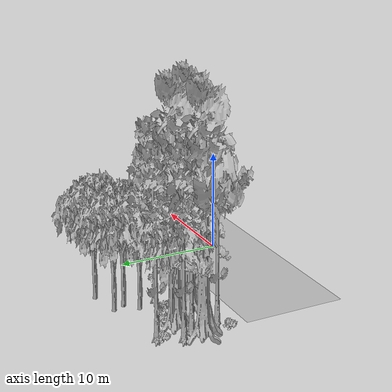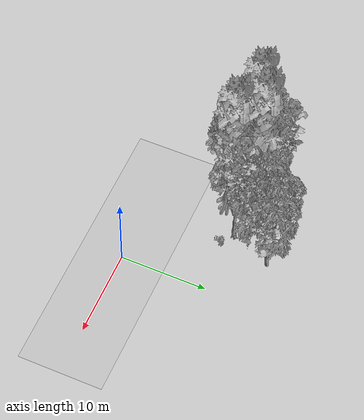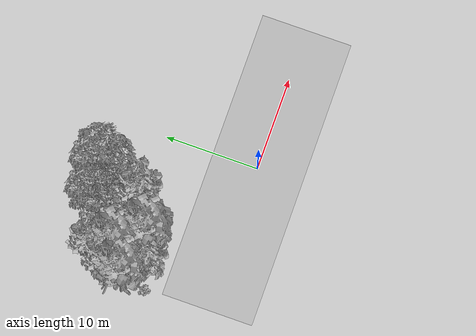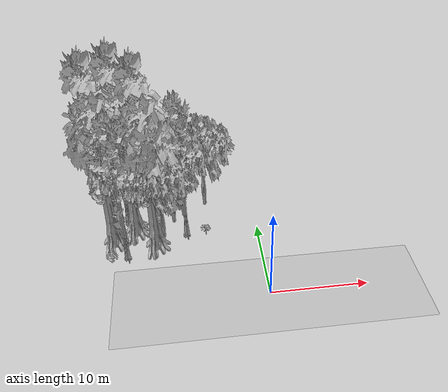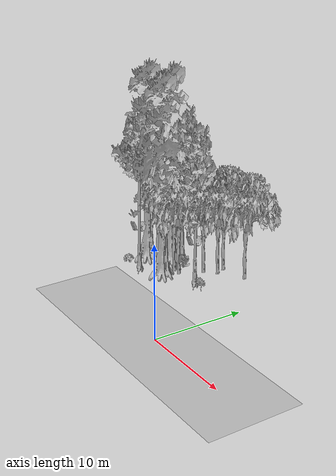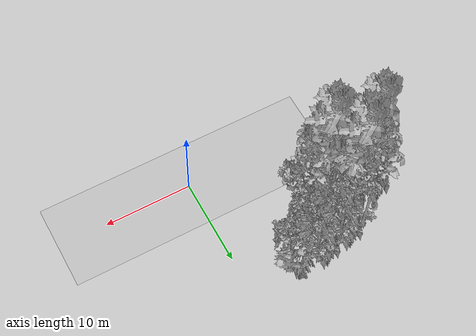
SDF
<sdf version="1.7">
 <world name="default">
  <model name="ground_plane">
   <static>1</static>
   <link name="link">
    <collision name="collision">
     <geometry><plane><normal>0 0 1</normal><size>100 100</size></plane></geometry>
     <surface><contact><ode><min_depth>0.01</min_depth><max_vel>0</max_vel></ode></contact></surface>
    </collision>
    <visual name="grass">
     <cast_shadows>0</cast_shadows>
     <geometry>
      <mesh>
       <scale>0.5814285714285714 0.18142857142857144 0.1</scale>
       <uri>file://grass_plane/meshes/grass_plane.dae</uri>
      </mesh>
     </geometry>
    </visual>
   </link>
  </model>
  <model name="Tree 23">
   <static>1</static>
   <pose>-10.539529069901036 9.728312270743949 0 1.57079 -0 0</pose>
   <link name="link">
    <collision name="collision">
     <geometry><mesh><scale>3.5 5 3.5</scale><uri>model://tree_2/meshes/tree_2.obj</uri></mesh></geometry>
    </collision>
    <visual name="visual">
     <geometry><mesh><scale>3.5 5 3.5</scale><uri>model://tree_2/meshes/tree_2.obj</uri></mesh></geometry>
    </visual>
   </link>
  </model>
  <model name="Tree 28">
   <static>1</static>
   <pose>-14.41020064280336 7.16225239467127 0 1.57079 -0 0</pose>
   <link name="link">
    <collision name="collision">
     <geometry><mesh><scale>3.5 5 3.5</scale><uri>model://tree_9/meshes/tree_9.obj</uri></mesh></geometry>
    </collision>
    <visual name="visual">
     <geometry><mesh><scale>3.5 5 3.5</scale><uri>model://tree_9/meshes/tree_9.obj</uri></mesh></geometry>
    </visual>
   </link>
  </model>
  <model name="Tree 37">
   <static>1</static>
   <pose>-15.541439748845285 10.894730508550747 0 1.57079 -0 0</pose>
   <link name="link">
    <collision name="collision">
     <geometry><mesh><scale>3.5 5 3.5</scale><uri>model://tree_9/meshes/tree_9.obj</uri></mesh></geometry>
    </collision>
    <visual name="visual">
     <geometry><mesh><scale>3.5 5 3.5</scale><uri>model://tree_9/meshes/tree_9.obj</uri></mesh></geometry>
    </visual>
   </link>
  </model>
  <model name="Tree 48">
   <static>1</static>
   <pose>-13.507995330129091 10.686962666167712 0 1.57079 -0 0</pose>
   <link name="link">
    <collision name="collision">
     <geometry><mesh><scale>3.5 5 3.5</scale><uri>model://tree_4/meshes/tree_4.obj</uri></mesh></geometry>
    </collision>
    <visual name="visual">
     <geometry><mesh><scale>3.5 5 3.5</scale><uri>model://tree_4/meshes/tree_4.obj</uri></mesh></geometry>
    </visual>
   </link>
  </model>
  <model name="Tree 94">
   <static>1</static>
   <pose>-11.501742207472198 9.783205465512477 0 1.57079 -0 0</pose>
   <link name="link">
    <collision name="collision">
     <geometry><mesh><scale>3.5 5 3.5</scale><uri>model://tree_2/meshes/tree_2.obj</uri></mesh></geometry>
    </collision>
    <visual name="visual">
     <geometry><mesh><scale>3.5 5 3.5</scale><uri>model://tree_2/meshes/tree_2.obj</uri></mesh></geometry>
    </visual>
   </link>
  </model>
  <model name="Tree 123">
   <static>1</static>
   <pose>-5.646809609880449 14.964036925481558 0 1.57079 -0 0</pose>
   <link name="link">
    <collision name="collision">
     <geometry><mesh><scale>3.5 5 3.5</scale><uri>model://tree_2/meshes/tree_2.obj</uri></mesh></geometry>
    </collision>
    <visual name="visual">
     <geometry><mesh><scale>3.5 5 3.5</scale><uri>model://tree_2/meshes/tree_2.obj</uri></mesh></geometry>
    </visual>
   </link>
  </model>
  <model name="Tree 155">
   <static>1</static>
   <pose>-8.672390897201822 14.329669799535345 0 1.57079 -0 0</pose>
   <link name="link">
    <collision name="collision">
     <geometry><mesh><scale>3.5 5 3.5</scale><uri>model://tree_2/meshes/tree_2.obj</uri></mesh></geometry>
    </collision>
    <visual name="visual">
     <geometry><mesh><scale>3.5 5 3.5</scale><uri>model://tree_2/meshes/tree_2.obj</uri></mesh></geometry>
    </visual>
   </link>
  </model>
  <model name="Tree 184">
   <static>1</static>
   <pose>-14.756111349384938 9.785228138002811 0 1.57079 -0 0</pose>
   <link name="link">
    <collision name="collision">
     <geometry><mesh><scale>3.5 5 3.5</scale><uri>model://tree_9/meshes/tree_9.obj</uri></mesh></geometry>
    </collision>
    <visual name="visual">
     <geometry><mesh><scale>3.5 5 3.5</scale><uri>model://tree_9/meshes/tree_9.obj</uri></mesh></geometry>
    </visual>
   </link>
  </model>
  <model name="Tree 188">
   <static>1</static>
   <pose>-15.833524602012155 9.159338971100901 0 1.57079 -0 0</pose>
   <link name="link">
    <collision name="collision">
     <geometry><mesh><scale>3.5 5 3.5</scale><uri>model://tree_4/meshes/tree_4.obj</uri></mesh></geometry>
    </collision>
    <visual name="visual">
     <geometry><mesh><scale>3.5 5 3.5</scale><uri>model://tree_4/meshes/tree_4.obj</uri></mesh></geometry>
    </visual>
   </link>
  </model>
  <model name="Tree 189">
   <static>1</static>
   <pose>-13.846630257436793 11.152741196419484 0 1.57079 -0 0</pose>
   <link name="link">
    <collision name="collision">
     <geometry><mesh><scale>3.5 5 3.5</scale><uri>model://tree_2/meshes/tree_2.obj</uri></mesh></geometry>
    </collision>
    <visual name="visual">
     <geometry><mesh><scale>3.5 5 3.5</scale><uri>model://tree_2/meshes/tree_2.obj</uri></mesh></geometry>
    </visual>
   </link>
  </model>
  <model name="Tree 276">
   <static>1</static>
   <pose>-11.272810550388087 8.157295111532992 0 1.57079 -0 0</pose>
   <link name="link">
    <collision name="collision">
     <geometry><mesh><scale>3.5 5 3.5</scale><uri>model://tree_4/meshes/tree_4.obj</uri></mesh></geometry>
    </collision>
    <visual name="visual">
     <geometry><mesh><scale>3.5 5 3.5</scale><uri>model://tree_4/meshes/tree_4.obj</uri></mesh></geometry>
    </visual>
   </link>
  </model>
  <model name="Tree 284">
   <static>1</static>
   <pose>-8.23179889257694 13.256467525382075 0 1.57079 -0 0</pose>
   <link name="link">
    <collision name="collision">
     <geometry><mesh><scale>3.5 5 3.5</scale><uri>model://tree_2/meshes/tree_2.obj</uri></mesh></geometry>
    </collision>
    <visual name="visual">
     <geometry><mesh><scale>3.5 5 3.5</scale><uri>model://tree_2/meshes/tree_2.obj</uri></mesh></geometry>
    </visual>
   </link>
  </model>
  <model name="Tree 320">
   <static>1</static>
   <pose>-7.92938041100102 10.105346835403985 0 1.57079 -0 0</pose>
   <link name="link">
    <collision name="collision">
     <geometry><mesh><scale>3.5 5 3.5</scale><uri>model://tree_9/meshes/tree_9.obj</uri></mesh></geometry>
    </collision>
    <visual name="visual">
     <geometry><mesh><scale>3.5 5 3.5</scale><uri>model://tree_9/meshes/tree_9.obj</uri></mesh></geometry>
    </visual>
   </link>
  </model>
  <model name="Tree 333">
   <static>1</static>
   <pose>-9.377544155614423 12.176304128685043 0 1.57079 -0 0</pose>
   <link name="link">
    <collision name="collision">
     <geometry><mesh><scale>3.5 5 3.5</scale><uri>model://tree_2/meshes/tree_2.obj</uri></mesh></geometry>
    </collision>
    <visual name="visual">
     <geometry><mesh><scale>3.5 5 3.5</scale><uri>model://tree_2/meshes/tree_2.obj</uri></mesh></geometry>
    </visual>
   </link>
  </model>
  <model name="Tree 435">
   <static>1</static>
   <pose>-14.497855256051054 12.915172565519569 0 1.57079 -0 0</pose>
   <link name="link">
    <collision name="collision">
     <geometry><mesh><scale>3.5 5 3.5</scale><uri>model://tree_9/meshes/tree_9.obj</uri></mesh></geometry>
    </collision>
    <visual name="visual">
     <geometry><mesh><scale>3.5 5 3.5</scale><uri>model://tree_9/meshes/tree_9.obj</uri></mesh></geometry>
    </visual>
   </link>
  </model>
  <model name="Bush 3">
   <static>1</static>
   <pose>-11.370953660445636 10.933488948216628 0 1.57079 -0 0</pose>
   <link name="link">
    <collision name="collision">
     <geometry><mesh><scale>2 2 2</scale><uri>model://bush_5/meshes/bush_5.obj</uri></mesh></geometry>
     <surface><contact><collide_without_contact>false</collide_without_contact></contact></surface>
    </collision>
    <visual name="visual">
     <geometry><mesh><scale>2 2 2</scale><uri>model://bush_5/meshes/bush_5.obj</uri></mesh></geometry>
    </visual>
   </link>
  </model>
  <model name="Bush 86">
   <static>1</static>
   <pose>-5.775028181631306 9.422658173794748 0 1.57079 -0 0</pose>
   <link name="link">
    <collision name="collision">
     <geometry><mesh><scale>2 2 2</scale><uri>model://bush_5/meshes/bush_5.obj</uri></mesh></geometry>
     <surface><contact><collide_without_contact>false</collide_without_contact></contact></surface>
    </collision>
    <visual name="visual">
     <geometry><mesh><scale>2 2 2</scale><uri>model://bush_5/meshes/bush_5.obj</uri></mesh></geometry>
    </visual>
   </link>
  </model>
  <model name="Bush 127">
   <static>1</static>
   <pose>-11.564947028345635 11.075903525031144 0 1.57079 -0 0</pose>
   <link name="link">
    <collision name="collision">
     <geometry><mesh><scale>2 2 2</scale><uri>model://bush_4/meshes/bush_4.obj</uri></mesh></geometry>
     <surface><contact><collide_without_contact>false</collide_without_contact></contact></surface>
    </collision>
    <visual name="visual">
     <geometry><mesh><scale>2 2 2</scale><uri>model://bush_4/meshes/bush_4.obj</uri></mesh></geometry>
    </visual>
   </link>
  </model>
  <model name="Bush 204">
   <static>1</static>
   <pose>-15.374556129976362 12.776579663207048 0 1.57079 -0 0</pose>
   <link name="link">
    <collision name="collision">
     <geometry><mesh><scale>2 2 2</scale><uri>model://bush_3/meshes/bush_3.obj</uri></mesh></geometry>
     <surface><contact><collide_without_contact>false</collide_without_contact></contact></surface>
    </collision>
    <visual name="visual">
     <geometry><mesh><scale>2 2 2</scale><uri>model://bush_3/meshes/bush_3.obj</uri></mesh></geometry>
    </visual>
   </link>
  </model>
  <model name="Bush 230">
   <static>1</static>
   <pose>-12.843387185318925 11.569139439440026 0 1.57079 -0 0</pose>
   <link name="link">
    <collision name="collision">
     <geometry><mesh><scale>2 2 2</scale><uri>model://bush_3/meshes/bush_3.obj</uri></mesh></geometry>
     <surface><contact><collide_without_contact>false</collide_without_contact></contact></surface>
    </collision>
    <visual name="visual">
     <geometry><mesh><scale>2 2 2</scale><uri>model://bush_3/meshes/bush_3.obj</uri></mesh></geometry>
    </visual>
   </link>
  </model>
  <model name="Bush 265">
   <static>1</static>
   <pose>-11.707174053475406 10.17819852083468 0 1.57079 -0 0</pose>
   <link name="link">
    <collision name="collision">
     <geometry><mesh><scale>2 2 2</scale><uri>model://bush_2/meshes/bush_2.obj</uri></mesh></geometry>
     <surface><contact><collide_without_contact>false</collide_without_contact></contact></surface>
    </collision>
    <visual name="visual">
     <geometry><mesh><scale>2 2 2</scale><uri>model://bush_2/meshes/bush_2.obj</uri></mesh></geometry>
    </visual>
   </link>
  </model>
  <model name="Bush 279">
   <static>1</static>
   <pose>-15.931587841230836 6.782091710900243 0 1.57079 -0 0</pose>
   <link name="link">
    <collision name="collision">
     <geometry><mesh><scale>2 2 2</scale><uri>model://bush_3/meshes/bush_3.obj</uri></mesh></geometry>
     <surface><contact><collide_without_contact>false</collide_without_contact></contact></surface>
    </collision>
    <visual name="visual">
     <geometry><mesh><scale>2 2 2</scale><uri>model://bush_3/meshes/bush_3.obj</uri></mesh></geometry>
    </visual>
   </link>
  </model>
 </world>
</sdf>
